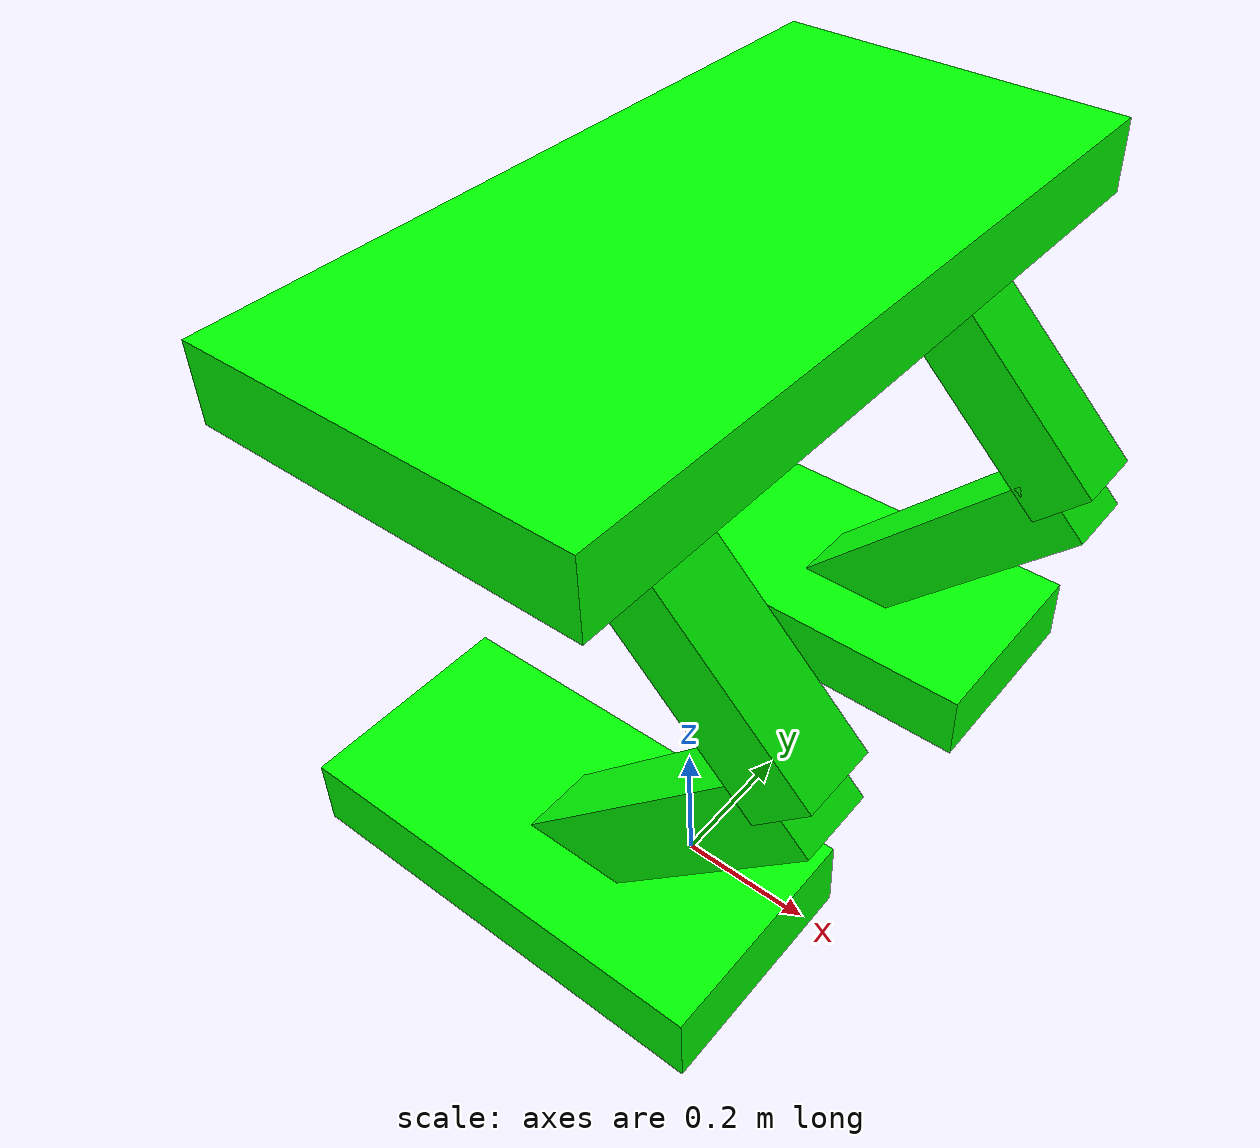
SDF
<?xml version='1.0'?>
<sdf version='1.6'>
  <model name='HumanoidRobot'>
    <model name='HumanoidRobot'>
      <link name='link_0'>
        <pose frame=''>-0.012657 0.075 0.964637 0 -0 0</pose>
        <inertial>
          <mass>1</mass>
          <inertia>
            <ixx>0.166667</ixx>
            <ixy>0</ixy>
            <ixz>0</ixz>
            <iyy>0.166667</iyy>
            <iyz>0</iyz>
            <izz>0.166667</izz>
          </inertia>
          <pose frame=''>0 0 0 0 -0 0</pose>
        </inertial>
        <gravity>1</gravity>
        <self_collide>0</self_collide>
        <kinematic>0</kinematic>
        <visual name='visual'>
          <pose frame=''>0 0 0 0 -0 0</pose>
          <geometry>
            <box>
              <size>0.5 1 0.1</size>
            </box>
          </geometry>
          <material>
            <lighting>1</lighting>
            <script>
              <uri>file://media/materials/scripts/gazebo.material</uri>
              <name>Gazebo/Grey</name>
            </script>
            <shader type='pixel'>
              <normal_map>__default__</normal_map>
            </shader>
            <ambient>0 1 0 1</ambient>
            <diffuse>0.1 0.1 0.1 1</diffuse>
            <specular>0 0 0 1</specular>
            <emissive>0 0 0 1</emissive>
          </material>
          <transparency>0</transparency>
          <cast_shadows>1</cast_shadows>
        </visual>
        <collision name='collision'>
          <laser_retro>0</laser_retro>
          <max_contacts>10</max_contacts>
          <pose frame=''>0 0 0 0 -0 0</pose>
          <geometry>
            <box>
              <size>0.5 1 0.1</size>
            </box>
          </geometry>
          <surface>
            <friction>
              <ode>
                <mu>1</mu>
                <mu2>1</mu2>
                <fdir1>0 0 0</fdir1>
                <slip1>0</slip1>
                <slip2>0</slip2>
              </ode>
              <torsional>
                <coefficient>1</coefficient>
                <patch_radius>0</patch_radius>
                <surface_radius>0</surface_radius>
                <use_patch_radius>1</use_patch_radius>
                <ode>
                  <slip>0</slip>
                </ode>
              </torsional>
            </friction>
            <bounce>
              <restitution_coefficient>0</restitution_coefficient>
              <threshold>1e+06</threshold>
            </bounce>
            <contact>
              <collide_without_contact>0</collide_without_contact>
              <collide_without_contact_bitmask>1</collide_without_contact_bitmask>
              <collide_bitmask>1</collide_bitmask>
              <ode>
                <soft_cfm>0</soft_cfm>
                <soft_erp>0.2</soft_erp>
                <kp>1e+13</kp>
                <kd>1</kd>
                <max_vel>0.01</max_vel>
                <min_depth>0</min_depth>
              </ode>
              <bullet>
                <split_impulse>1</split_impulse>
                <split_impulse_penetration_threshold>-0.01</split_impulse_penetration_threshold>
                <soft_cfm>0</soft_cfm>
                <soft_erp>0.2</soft_erp>
                <kp>1e+13</kp>
                <kd>1</kd>
              </bullet>
            </contact>
          </surface>
        </collision>
      </link>
      <link name='link_2'>
        <pose frame=''>-0.012657 0.375 0.964637 0 -0.785 0</pose>
        <inertial>
          <mass>1</mass>
          <inertia>
            <ixx>0.166667</ixx>
            <ixy>0</ixy>
            <ixz>0</ixz>
            <iyy>0.166667</iyy>
            <iyz>0</iyz>
            <izz>0.166667</izz>
          </inertia>
          <pose frame=''>0 0 0 0 -0 0</pose>
        </inertial>
        <gravity>1</gravity>
        <self_collide>0</self_collide>
        <kinematic>0</kinematic>
        <visual name='visual'>
          <pose frame=''>0 0 -0.25 0 -0 0</pose>
          <geometry>
            <box>
              <size>0.1 0.1 0.5</size>
            </box>
          </geometry>
          <material>
            <lighting>1</lighting>
            <script>
              <uri>file://media/materials/scripts/gazebo.material</uri>
              <name>Gazebo/Grey</name>
            </script>
            <shader type='pixel'>
              <normal_map>__default__</normal_map>
            </shader>
            <ambient>0 1 0 1</ambient>
            <diffuse>0.1 0.1 0.1 1</diffuse>
            <specular>0 0 0 1</specular>
            <emissive>0 0 0 1</emissive>
          </material>
          <transparency>0</transparency>
          <cast_shadows>1</cast_shadows>
        </visual>
        <collision name='collision'>
          <laser_retro>0</laser_retro>
          <max_contacts>10</max_contacts>
          <pose frame=''>0 0 -0.25 0 -0 0</pose>
          <geometry>
            <box>
              <size>0.1 0.1 0.5</size>
            </box>
          </geometry>
          <surface>
            <friction>
              <ode>
                <mu>1</mu>
                <mu2>1</mu2>
                <fdir1>0 0 0</fdir1>
                <slip1>0</slip1>
                <slip2>0</slip2>
              </ode>
              <torsional>
                <coefficient>1</coefficient>
                <patch_radius>0</patch_radius>
                <surface_radius>0</surface_radius>
                <use_patch_radius>1</use_patch_radius>
                <ode>
                  <slip>0</slip>
                </ode>
              </torsional>
            </friction>
            <bounce>
              <restitution_coefficient>0</restitution_coefficient>
              <threshold>1e+06</threshold>
            </bounce>
            <contact>
              <collide_without_contact>0</collide_without_contact>
              <collide_without_contact_bitmask>1</collide_without_contact_bitmask>
              <collide_bitmask>1</collide_bitmask>
              <ode>
                <soft_cfm>0</soft_cfm>
                <soft_erp>0.2</soft_erp>
                <kp>1e+13</kp>
                <kd>1</kd>
                <max_vel>0.01</max_vel>
                <min_depth>0</min_depth>
              </ode>
              <bullet>
                <split_impulse>1</split_impulse>
                <split_impulse_penetration_threshold>-0.01</split_impulse_penetration_threshold>
                <soft_cfm>0</soft_cfm>
                <soft_erp>0.2</soft_erp>
                <kp>1e+13</kp>
                <kd>1</kd>
              </bullet>
            </contact>
          </surface>
        </collision>
      </link>
      <link name='link_2_clone'>
        <pose frame=''>0.340755 0.375 0.610943 0 0.7857 0</pose>
        <inertial>
          <mass>1</mass>
          <inertia>
            <ixx>0.166667</ixx>
            <ixy>0</ixy>
            <ixz>0</ixz>
            <iyy>0.166667</iyy>
            <iyz>0</iyz>
            <izz>0.166667</izz>
          </inertia>
          <pose frame=''>0 0 0 0 -0 0</pose>
        </inertial>
        <self_collide>0</self_collide>
        <kinematic>0</kinematic>
        <gravity>1</gravity>
        <visual name='visual'>
          <pose frame=''>0 0 -0.25 0 -0 0</pose>
          <geometry>
            <box>
              <size>0.1 0.1 0.5</size>
            </box>
          </geometry>
          <material>
            <lighting>1</lighting>
            <script>
              <uri>file://media/materials/scripts/gazebo.material</uri>
              <name>Gazebo/Grey</name>
            </script>
            <shader type='pixel'>
              <normal_map>__default__</normal_map>
            </shader>
            <ambient>0 1 0 1</ambient>
            <diffuse>0.1 0.1 0.1 1</diffuse>
            <specular>0 0 0 1</specular>
            <emissive>0 0 0 1</emissive>
          </material>
          <transparency>0</transparency>
          <cast_shadows>1</cast_shadows>
        </visual>
        <collision name='collision'>
          <laser_retro>0</laser_retro>
          <max_contacts>10</max_contacts>
          <pose frame=''>0 0 -0.25 0 -0 0</pose>
          <geometry>
            <box>
              <size>0.1 0.1 0.5</size>
            </box>
          </geometry>
          <surface>
            <friction>
              <ode>
                <mu>1</mu>
                <mu2>1</mu2>
                <fdir1>0 0 0</fdir1>
                <slip1>0</slip1>
                <slip2>0</slip2>
              </ode>
              <torsional>
                <coefficient>1</coefficient>
                <patch_radius>0</patch_radius>
                <surface_radius>0</surface_radius>
                <use_patch_radius>1</use_patch_radius>
                <ode>
                  <slip>0</slip>
                </ode>
              </torsional>
            </friction>
            <bounce>
              <restitution_coefficient>0</restitution_coefficient>
              <threshold>1e+06</threshold>
            </bounce>
            <contact>
              <collide_without_contact>0</collide_without_contact>
              <collide_without_contact_bitmask>1</collide_without_contact_bitmask>
              <collide_bitmask>1</collide_bitmask>
              <ode>
                <soft_cfm>0</soft_cfm>
                <soft_erp>0.2</soft_erp>
                <kp>1e+13</kp>
                <kd>1</kd>
                <max_vel>0.01</max_vel>
                <min_depth>0</min_depth>
              </ode>
              <bullet>
                <split_impulse>1</split_impulse>
                <split_impulse_penetration_threshold>-0.01</split_impulse_penetration_threshold>
                <soft_cfm>0</soft_cfm>
                <soft_erp>0.2</soft_erp>
                <kp>1e+13</kp>
                <kd>1</kd>
              </bullet>
            </contact>
          </surface>
        </collision>
      </link>
      <link name='link_2_clone_clone'>
        <pose frame=''>-0.012657 -0.225 0.964637 0 -0.7857 0</pose>
        <inertial>
          <mass>1</mass>
          <inertia>
            <ixx>0.166667</ixx>
            <ixy>0</ixy>
            <ixz>0</ixz>
            <iyy>0.166667</iyy>
            <iyz>0</iyz>
            <izz>0.166667</izz>
          </inertia>
          <pose frame=''>0 0 0 0 -0 0</pose>
        </inertial>
        <self_collide>0</self_collide>
        <kinematic>0</kinematic>
        <gravity>1</gravity>
        <visual name='visual'>
          <pose frame=''>0 0 -0.25 0 -0 0</pose>
          <geometry>
            <box>
              <size>0.1 0.1 0.5</size>
            </box>
          </geometry>
          <material>
            <lighting>1</lighting>
            <script>
              <uri>file://media/materials/scripts/gazebo.material</uri>
              <name>Gazebo/Grey</name>
            </script>
            <shader type='pixel'>
              <normal_map>__default__</normal_map>
            </shader>
            <ambient>0 1 0 1</ambient>
            <diffuse>0.1 0.1 0.1 1</diffuse>
            <specular>0 0 0 1</specular>
            <emissive>0 0 0 1</emissive>
          </material>
          <transparency>0</transparency>
          <cast_shadows>1</cast_shadows>
        </visual>
        <collision name='collision'>
          <laser_retro>0</laser_retro>
          <max_contacts>10</max_contacts>
          <pose frame=''>0 0 -0.25 0 -0 0</pose>
          <geometry>
            <box>
              <size>0.1 0.1 0.5</size>
            </box>
          </geometry>
          <surface>
            <friction>
              <ode>
                <mu>1</mu>
                <mu2>1</mu2>
                <fdir1>0 0 0</fdir1>
                <slip1>0</slip1>
                <slip2>0</slip2>
              </ode>
              <torsional>
                <coefficient>1</coefficient>
                <patch_radius>0</patch_radius>
                <surface_radius>0</surface_radius>
                <use_patch_radius>1</use_patch_radius>
                <ode>
                  <slip>0</slip>
                </ode>
              </torsional>
            </friction>
            <bounce>
              <restitution_coefficient>0</restitution_coefficient>
              <threshold>1e+06</threshold>
            </bounce>
            <contact>
              <collide_without_contact>0</collide_without_contact>
              <collide_without_contact_bitmask>1</collide_without_contact_bitmask>
              <collide_bitmask>1</collide_bitmask>
              <ode>
                <soft_cfm>0</soft_cfm>
                <soft_erp>0.2</soft_erp>
                <kp>1e+13</kp>
                <kd>1</kd>
                <max_vel>0.01</max_vel>
                <min_depth>0</min_depth>
              </ode>
              <bullet>
                <split_impulse>1</split_impulse>
                <split_impulse_penetration_threshold>-0.01</split_impulse_penetration_threshold>
                <soft_cfm>0</soft_cfm>
                <soft_erp>0.2</soft_erp>
                <kp>1e+13</kp>
                <kd>1</kd>
              </bullet>
            </contact>
          </surface>
        </collision>
      </link>
      <link name='link_2_clone_clone_clone'>
        <pose frame=''>0.341003 -0.225 0.611191 0 0.785 0</pose>
        <inertial>
          <mass>1</mass>
          <inertia>
            <ixx>0.166667</ixx>
            <ixy>0</ixy>
            <ixz>0</ixz>
            <iyy>0.166667</iyy>
            <iyz>0</iyz>
            <izz>0.166667</izz>
          </inertia>
          <pose frame=''>0 0 0 0 -0 0</pose>
        </inertial>
        <self_collide>0</self_collide>
        <kinematic>0</kinematic>
        <gravity>1</gravity>
        <visual name='visual'>
          <pose frame=''>0 0 -0.25 0 -0 0</pose>
          <geometry>
            <box>
              <size>0.1 0.1 0.5</size>
            </box>
          </geometry>
          <material>
            <lighting>1</lighting>
            <script>
              <uri>file://media/materials/scripts/gazebo.material</uri>
              <name>Gazebo/Grey</name>
            </script>
            <shader type='pixel'>
              <normal_map>__default__</normal_map>
            </shader>
            <ambient>0 1 0 1</ambient>
            <diffuse>0.1 0.1 0.1 1</diffuse>
            <specular>0 0 0 1</specular>
            <emissive>0 0 0 1</emissive>
          </material>
          <transparency>0</transparency>
          <cast_shadows>1</cast_shadows>
        </visual>
        <collision name='collision'>
          <laser_retro>0</laser_retro>
          <max_contacts>10</max_contacts>
          <pose frame=''>0 0 -0.25 0 -0 0</pose>
          <geometry>
            <box>
              <size>0.1 0.1 0.5</size>
            </box>
          </geometry>
          <surface>
            <friction>
              <ode>
                <mu>1</mu>
                <mu2>1</mu2>
                <fdir1>0 0 0</fdir1>
                <slip1>0</slip1>
                <slip2>0</slip2>
              </ode>
              <torsional>
                <coefficient>1</coefficient>
                <patch_radius>0</patch_radius>
                <surface_radius>0</surface_radius>
                <use_patch_radius>1</use_patch_radius>
                <ode>
                  <slip>0</slip>
                </ode>
              </torsional>
            </friction>
            <bounce>
              <restitution_coefficient>0</restitution_coefficient>
              <threshold>1e+06</threshold>
            </bounce>
            <contact>
              <collide_without_contact>0</collide_without_contact>
              <collide_without_contact_bitmask>1</collide_without_contact_bitmask>
              <collide_bitmask>1</collide_bitmask>
              <ode>
                <soft_cfm>0</soft_cfm>
                <soft_erp>0.2</soft_erp>
                <kp>1e+13</kp>
                <kd>1</kd>
                <max_vel>0.01</max_vel>
                <min_depth>0</min_depth>
              </ode>
              <bullet>
                <split_impulse>1</split_impulse>
                <split_impulse_penetration_threshold>-0.01</split_impulse_penetration_threshold>
                <soft_cfm>0</soft_cfm>
                <soft_erp>0.2</soft_erp>
                <kp>1e+13</kp>
                <kd>1</kd>
              </bullet>
            </contact>
          </surface>
        </collision>
      </link>
      <link name='link_3'>
        <pose frame=''>-0.01241 -0.225 0.257496 0 -0 0</pose>
        <inertial>
          <mass>1</mass>
          <inertia>
            <ixx>0.166667</ixx>
            <ixy>0</ixy>
            <ixz>0</ixz>
            <iyy>0.166667</iyy>
            <iyz>0</iyz>
            <izz>0.166667</izz>
          </inertia>
          <pose frame=''>0 0 0 0 -0 0</pose>
        </inertial>
        <gravity>1</gravity>
        <self_collide>0</self_collide>
        <kinematic>0</kinematic>
        <visual name='visual'>
          <pose frame=''>0 0 0 0 -0 0</pose>
          <geometry>
            <box>
              <size>0.6 0.3 0.1</size>
            </box>
          </geometry>
          <material>
            <lighting>1</lighting>
            <script>
              <uri>file://media/materials/scripts/gazebo.material</uri>
              <name>Gazebo/Grey</name>
            </script>
            <shader type='pixel'>
              <normal_map>__default__</normal_map>
            </shader>
            <ambient>0 1 0 1</ambient>
            <diffuse>0.1 0.1 0.1 1</diffuse>
            <specular>0 0 0 1</specular>
            <emissive>0 0 0 1</emissive>
          </material>
          <transparency>0</transparency>
          <cast_shadows>1</cast_shadows>
        </visual>
        <collision name='collision'>
          <laser_retro>0</laser_retro>
          <max_contacts>10</max_contacts>
          <pose frame=''>0 0 0 0 -0 0</pose>
          <geometry>
            <box>
              <size>0.6 0.3 0.1</size>
            </box>
          </geometry>
          <surface>
            <friction>
              <ode>
                <mu>1</mu>
                <mu2>1</mu2>
                <fdir1>0 0 0</fdir1>
                <slip1>0</slip1>
                <slip2>0</slip2>
              </ode>
              <torsional>
                <coefficient>1</coefficient>
                <patch_radius>0</patch_radius>
                <surface_radius>0</surface_radius>
                <use_patch_radius>1</use_patch_radius>
                <ode>
                  <slip>0</slip>
                </ode>
              </torsional>
            </friction>
            <bounce>
              <restitution_coefficient>0</restitution_coefficient>
              <threshold>1e+06</threshold>
            </bounce>
            <contact>
              <collide_without_contact>0</collide_without_contact>
              <collide_without_contact_bitmask>1</collide_without_contact_bitmask>
              <collide_bitmask>1</collide_bitmask>
              <ode>
                <soft_cfm>0</soft_cfm>
                <soft_erp>0.2</soft_erp>
                <kp>1e+13</kp>
                <kd>1</kd>
                <max_vel>0.01</max_vel>
                <min_depth>0</min_depth>
              </ode>
              <bullet>
                <split_impulse>1</split_impulse>
                <split_impulse_penetration_threshold>-0.01</split_impulse_penetration_threshold>
                <soft_cfm>0</soft_cfm>
                <soft_erp>0.2</soft_erp>
                <kp>1e+13</kp>
                <kd>1</kd>
              </bullet>
            </contact>
          </surface>
        </collision>
      </link>
      <link name='link_3_clone'>
        <pose frame=''>-0.012905 0.375 0.257496 0 -0 0</pose>
        <inertial>
          <mass>1</mass>
          <inertia>
            <ixx>0.166667</ixx>
            <ixy>0</ixy>
            <ixz>0</ixz>
            <iyy>0.166667</iyy>
            <iyz>0</iyz>
            <izz>0.166667</izz>
          </inertia>
          <pose frame=''>0 0 0 0 -0 0</pose>
        </inertial>
        <self_collide>0</self_collide>
        <kinematic>0</kinematic>
        <gravity>1</gravity>
        <visual name='visual'>
          <pose frame=''>0 0 0 0 -0 0</pose>
          <geometry>
            <box>
              <size>0.6 0.3 0.1</size>
            </box>
          </geometry>
          <material>
            <lighting>1</lighting>
            <script>
              <uri>file://media/materials/scripts/gazebo.material</uri>
              <name>Gazebo/Grey</name>
            </script>
            <shader type='pixel'>
              <normal_map>__default__</normal_map>
            </shader>
            <ambient>0 1 0 1</ambient>
            <diffuse>0.1 0.1 0.1 1</diffuse>
            <specular>0	0 0 1</specular>
            <emissive>0	0 0 1</emissive>
          </material>
          <transparency>0</transparency>
          <cast_shadows>1</cast_shadows>
        </visual>
        <collision name='collision'>
          <laser_retro>0</laser_retro>
          <max_contacts>10</max_contacts>
          <pose frame=''>0 0 0 0 -0 0</pose>
          <geometry>
            <box>
              <size>0.6 0.3 0.1</size>
            </box>
          </geometry>
          <surface>
            <friction>
              <ode>
                <mu>1</mu>
                <mu2>1</mu2>
                <fdir1>0 0 0</fdir1>
                <slip1>0</slip1>
                <slip2>0</slip2>
              </ode>
              <torsional>
                <coefficient>1</coefficient>
                <patch_radius>0</patch_radius>
                <surface_radius>0</surface_radius>
                <use_patch_radius>1</use_patch_radius>
                <ode>
                  <slip>0</slip>
                </ode>
              </torsional>
            </friction>
            <bounce>
              <restitution_coefficient>0</restitution_coefficient>
              <threshold>1e+06</threshold>
            </bounce>
            <contact>
              <collide_without_contact>0</collide_without_contact>
              <collide_without_contact_bitmask>1</collide_without_contact_bitmask>
              <collide_bitmask>1</collide_bitmask>
              <ode>
                <soft_cfm>0</soft_cfm>
                <soft_erp>0.2</soft_erp>
                <kp>1e+13</kp>
                <kd>1</kd>
                <max_vel>0.01</max_vel>
                <min_depth>0</min_depth>
              </ode>
              <bullet>
                <split_impulse>1</split_impulse>
                <split_impulse_penetration_threshold>-0.01</split_impulse_penetration_threshold>
                <soft_cfm>0</soft_cfm>
                <soft_erp>0.2</soft_erp>
                <kp>1e+13</kp>
                <kd>1</kd>
              </bullet>
            </contact>
          </surface>
        </collision>
      </link>
      <joint name='link_0_JOINT_0' type='fixed'>
        <parent>link_0</parent>
        <child>link_2</child>
        <pose frame=''>0 0 0 0 -0 0</pose>
        <axis>
          <xyz>0 1 0</xyz>
          <use_parent_model_frame>0</use_parent_model_frame>
          <limit>
            <lower>-1.79769e+308</lower>
            <upper>1.79769e+308</upper>
            <effort>-1</effort>
            <velocity>-1</velocity>
          </limit>
          <dynamics>
            <spring_reference>0</spring_reference>
            <spring_stiffness>0</spring_stiffness>
            <damping>0</damping>
          </dynamics>
        </axis>
        <physics>
          <ode>
            <limit>
              <cfm>0</cfm>
              <erp>0.2</erp>
            </limit>
            <suspension>
              <cfm>0</cfm>
              <erp>0.2</erp>
            </suspension>
          </ode>
        </physics>
      </joint>
      <joint name='link_0_JOINT_2' type='fixed'>
        <parent>link_0</parent>
        <child>link_2_clone_clone</child>
        <pose frame=''>0 0 0 0 -0 0</pose>
        <axis>
          <xyz>0 1 0</xyz>
          <use_parent_model_frame>0</use_parent_model_frame>
          <limit>
            <lower>-1.79769e+308</lower>
            <upper>1.79769e+308</upper>
            <effort>-1</effort>
            <velocity>-1</velocity>
          </limit>
          <dynamics>
            <spring_reference>0</spring_reference>
            <spring_stiffness>0</spring_stiffness>
            <damping>0</damping>
            <friction>0</friction>
          </dynamics>
        </axis>
        <physics>
          <ode>
            <limit>
              <cfm>0</cfm>
              <erp>0.2</erp>
            </limit>
            <suspension>
              <cfm>0</cfm>
              <erp>0.2</erp>
            </suspension>
          </ode>
        </physics>
      </joint>
      <joint name='link_2_JOINT_1' type='fixed'>
        <parent>link_2</parent>
        <child>link_2_clone</child>
        <pose frame=''>0 0 0 0 -0 0</pose>
        <axis>
          <xyz>0 1 0</xyz>
          <use_parent_model_frame>0</use_parent_model_frame>
          <limit>
            <lower>-1.79769e+308</lower>
            <upper>1.79769e+308</upper>
            <effort>-1</effort>
            <velocity>-1</velocity>
          </limit>
          <dynamics>
            <spring_reference>0</spring_reference>
            <spring_stiffness>0</spring_stiffness>
            <damping>0</damping>
            <friction>0</friction>
          </dynamics>
        </axis>
        <physics>
          <ode>
            <limit>
              <cfm>0</cfm>
              <erp>0.2</erp>
            </limit>
            <suspension>
              <cfm>0</cfm>
              <erp>0.2</erp>
            </suspension>
          </ode>
        </physics>
      </joint>
      <joint name='link_2_clone_JOINT_5' type='fixed'>
        <parent>link_2_clone</parent>
        <child>link_3_clone</child>
        <pose frame=''>0 0 0 0 -0 0</pose>
        <axis>
          <xyz>0 1 0</xyz>
          <use_parent_model_frame>0</use_parent_model_frame>
          <limit>
            <lower>-1.79769e+308</lower>
            <upper>1.79769e+308</upper>
            <effort>-1</effort>
            <velocity>-1</velocity>
          </limit>
          <dynamics>
            <spring_reference>0</spring_reference>
            <spring_stiffness>0</spring_stiffness>
            <damping>0</damping>
            <friction>0</friction>
          </dynamics>
        </axis>
        <physics>
          <ode>
            <limit>
              <cfm>0</cfm>
              <erp>0.2</erp>
            </limit>
            <suspension>
              <cfm>0</cfm>
              <erp>0.2</erp>
            </suspension>
          </ode>
        </physics>
      </joint>
      <joint name='link_2_clone_clone_JOINT_3' type='fixed'>
        <parent>link_2_clone_clone</parent>
        <child>link_2_clone_clone_clone</child>
        <pose frame=''>0 0 0 0 -0 0</pose>
        <axis>
          <xyz>0 1 0</xyz>
          <use_parent_model_frame>0</use_parent_model_frame>
          <limit>
            <lower>-1.79769e+308</lower>
            <upper>1.79769e+308</upper>
            <effort>-1</effort>
            <velocity>-1</velocity>
          </limit>
          <dynamics>
            <spring_reference>0</spring_reference>
            <spring_stiffness>0</spring_stiffness>
            <damping>0</damping>
          </dynamics>
        </axis>
        <physics>
          <ode>
            <limit>
              <cfm>0</cfm>
              <erp>0.2</erp>
            </limit>
            <suspension>
              <cfm>0</cfm>
              <erp>0.2</erp>
            </suspension>
          </ode>
        </physics>
      </joint>
      <joint name='link_2_clone_clone_clone_JOINT_4' type='fixed'>
        <parent>link_2_clone_clone_clone</parent>
        <child>link_3</child>
        <pose frame=''>0 0 0 0 -0 0</pose>
        <axis>
          <xyz>0 1 0</xyz>
          <use_parent_model_frame>0</use_parent_model_frame>
          <limit>
            <lower>-1.79769e+308</lower>
            <upper>1.79769e+308</upper>
            <effort>-1</effort>
            <velocity>-1</velocity>
          </limit>
          <dynamics>
            <spring_reference>0</spring_reference>
            <spring_stiffness>0</spring_stiffness>
            <damping>0</damping>
          </dynamics>
        </axis>
        <physics>
          <ode>
            <limit>
              <cfm>0</cfm>
              <erp>0.2</erp>
            </limit>
            <suspension>
              <cfm>0</cfm>
              <erp>0.2</erp>
            </suspension>
          </ode>
        </physics>
      </joint>
      <static>0</static>
      <allow_auto_disable>1</allow_auto_disable>
      <pose frame=''>-0 -0 0 0 -0 0</pose>
    </model>
    <static>1</static>
    <allow_auto_disable>1</allow_auto_disable>
  </model>
</sdf>
